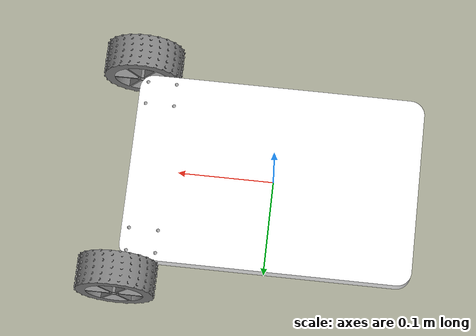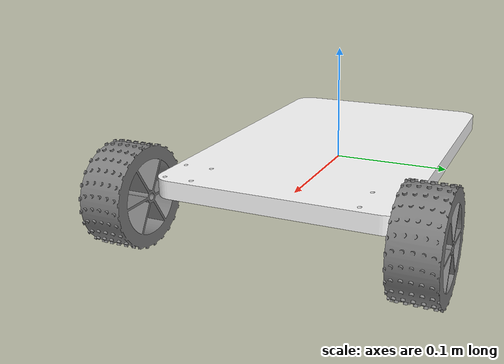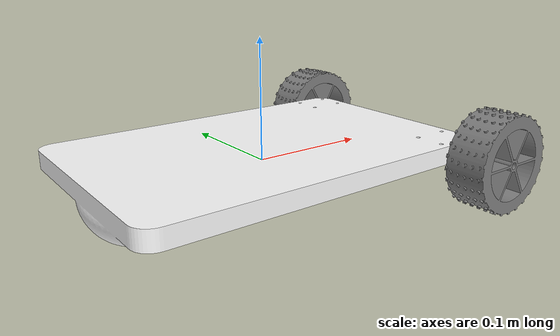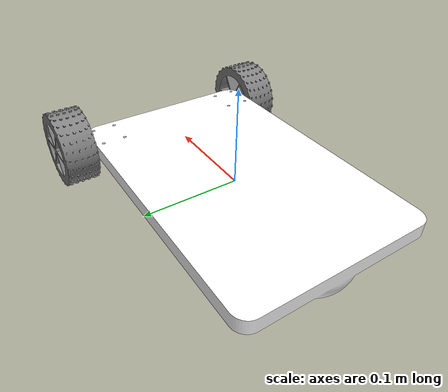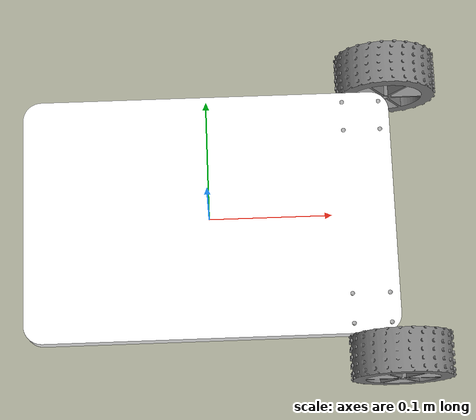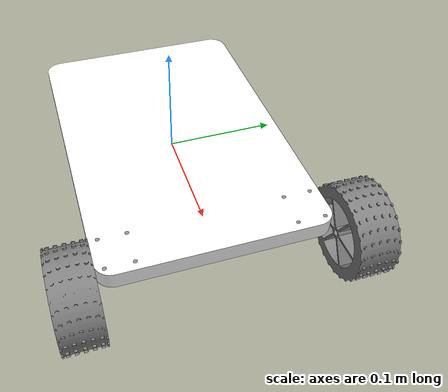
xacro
<?xml version="1.0" ?>

<robot name="my_bot" xmlns:xacro="https://www.ros.org/wiki/xacro">

    <material name="blue">
	    <color rgba="0 0 0.8 1"/>
    </material>

    <material name="white">
	    <color rgba="1 1 1 1"/>
    </material>

    <material name="grey">
	    <color rgba="0.5 0.5 0.5 1"/>
    </material>

    <material name="black">
      <color rgba="0.0 0.0 0.0 1.0"/>
    </material>

    <material name="green">
        <color rgba="0.0 0.8 0.0 1.0"/>
    </material>

    <link name="base_link">
        <collision>
          <origin rpy="0 0 0" xyz="0 0 0"/>
          <geometry>
            <box size="0.300 0.300 0.015"/>
          </geometry>
        </collision>
    </link>

    <joint name="base_link_joint" type="fixed">
        <origin xyz="0 0 0.0" rpy="0 0 0" />
        <parent link="base_link" />
        <child link="base_plate" />
    </joint>

    <link name="base_plate">
    <visual>
      <origin rpy="0 0 0" xyz="0.0 0.0 0.0"/>
      <geometry>
        <mesh filename="package://my_bot_new/stl/chassis.stl" scale="0.001 0.001 0.001"/>
      </geometry>
      <material name="white"/>
    </visual>
    <collision>
      <origin rpy="0 0 0" xyz="0.0 0.0 0.0"  />
      <geometry>
        <mesh filename="package://my_bot_new/stl/chassis.stl" scale="0.001 0.001 0.001" />
      </geometry>
    </collision>
    </link>

    <joint name="right_wheel_joint" type="continuous">
        <origin xyz="0.150 0.100 0.0" rpy="0 0 1.5707963268" />
        <parent link="base_plate" />
        <child link="right_wheel" />
        <axis xyz="1 0 0" />
    </joint>

    <link name="right_wheel">
    <visual>
      <origin xyz="0.0 0.0 0.0" rpy="0 1.5707963268 0" />
      <geometry>
        <mesh filename="package://my_bot_new/stl/wheel.stl" scale="0.001 0.001 0.001"/>
      </geometry>
      <material name="grey"/>
    </visual>
    <collision>
      <origin xyz="0.0 0.0 0.0" rpy="0 1.5707963268 0" />
      <geometry>
        <mesh filename="package://my_bot_new/stl/wheel.stl" scale="0.001 0.001 0.001" />
      </geometry>
    </collision>
    </link>

    <joint name="left_wheel_joint" type="continuous">
        <origin xyz="0.150 -0.100 0.0" rpy="0 0 1.5707963268" />
        <parent link="base_plate" />
        <child link="left_wheel" />
        <axis xyz="1 0 0" />
    </joint>

    <link name="left_wheel">
    <visual>
      <origin xyz="-0.035 0.0 0.0" rpy="0 1.5707963268 0" />

      <geometry>
        <mesh filename="package://my_bot_new/stl/wheel.stl" scale="0.001 0.001 0.001"/>
      </geometry>
      <material name="grey"/>
    </visual>
    <collision>
      <origin xyz="0.0 0.0 0.0" rpy="0 1.5707963268 0" />
      <geometry>
        <mesh filename="package://my_bot_new/stl/wheel.stl" scale="0.001 0.001 0.001" />
      </geometry>
    </collision>
    </link>

</robot>
